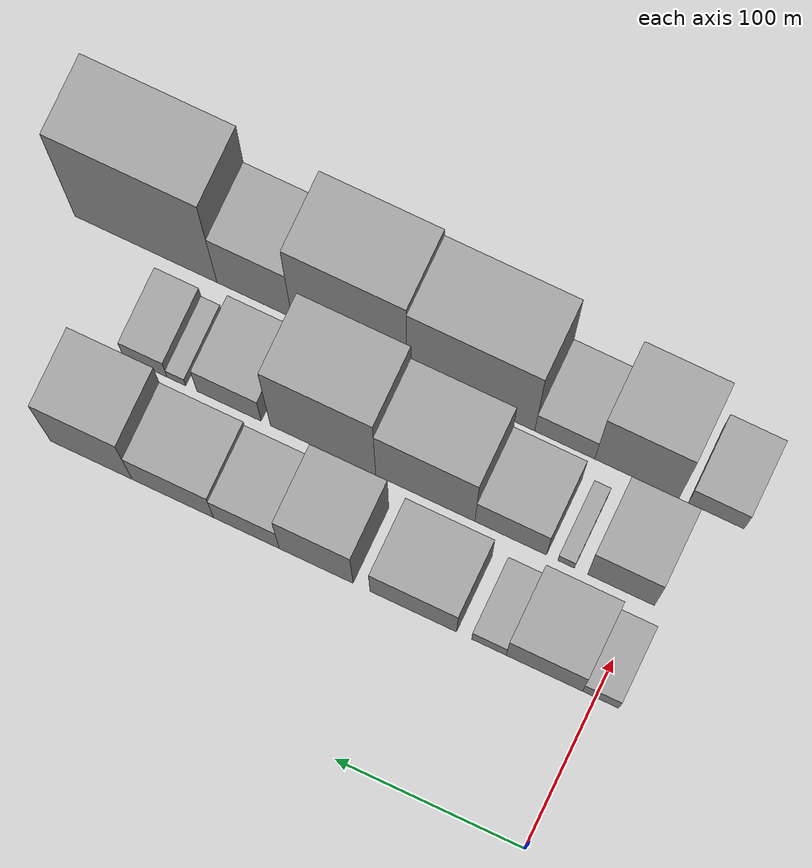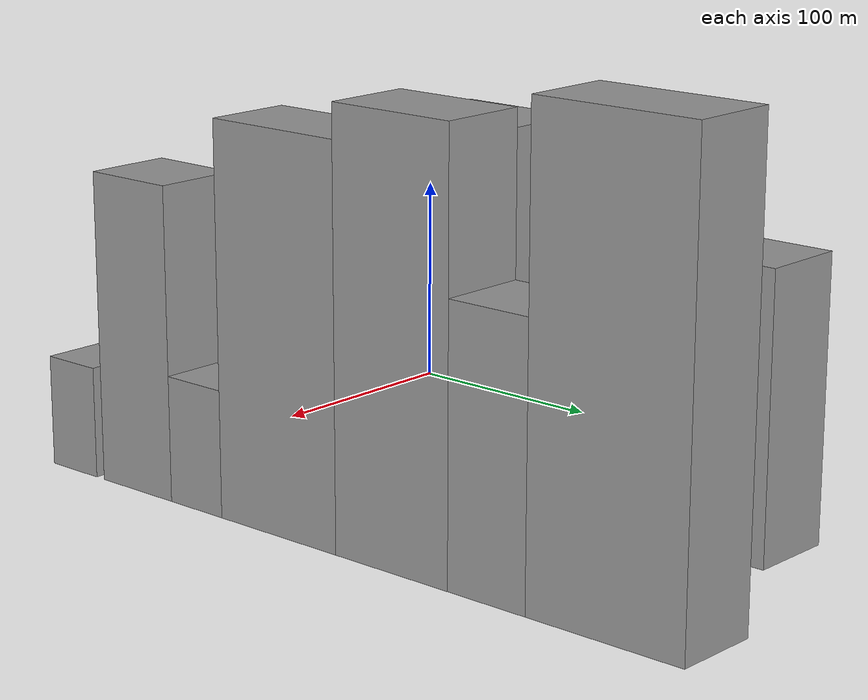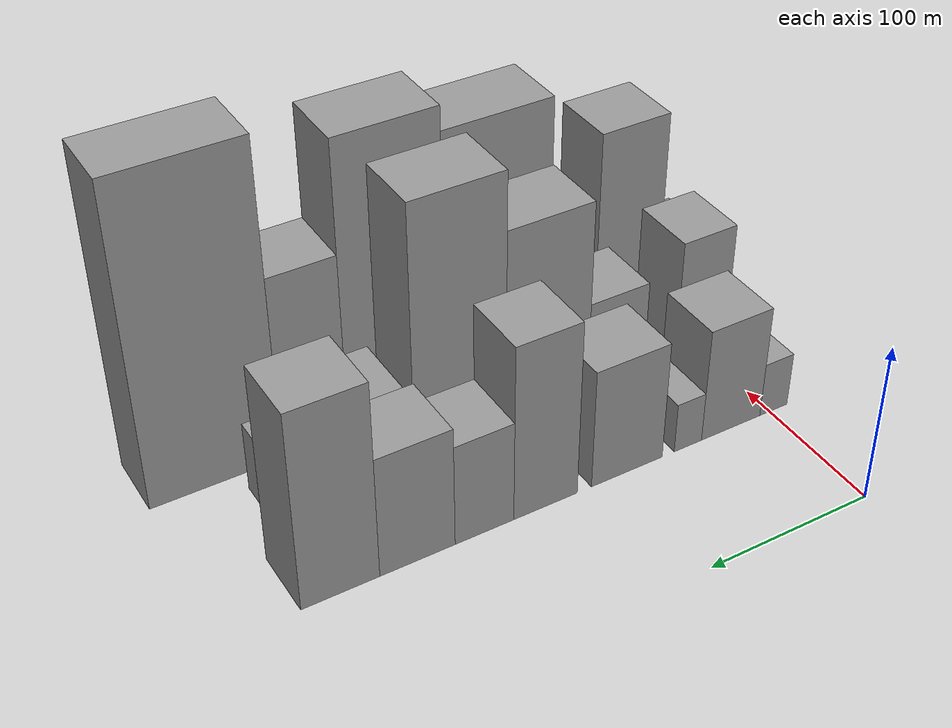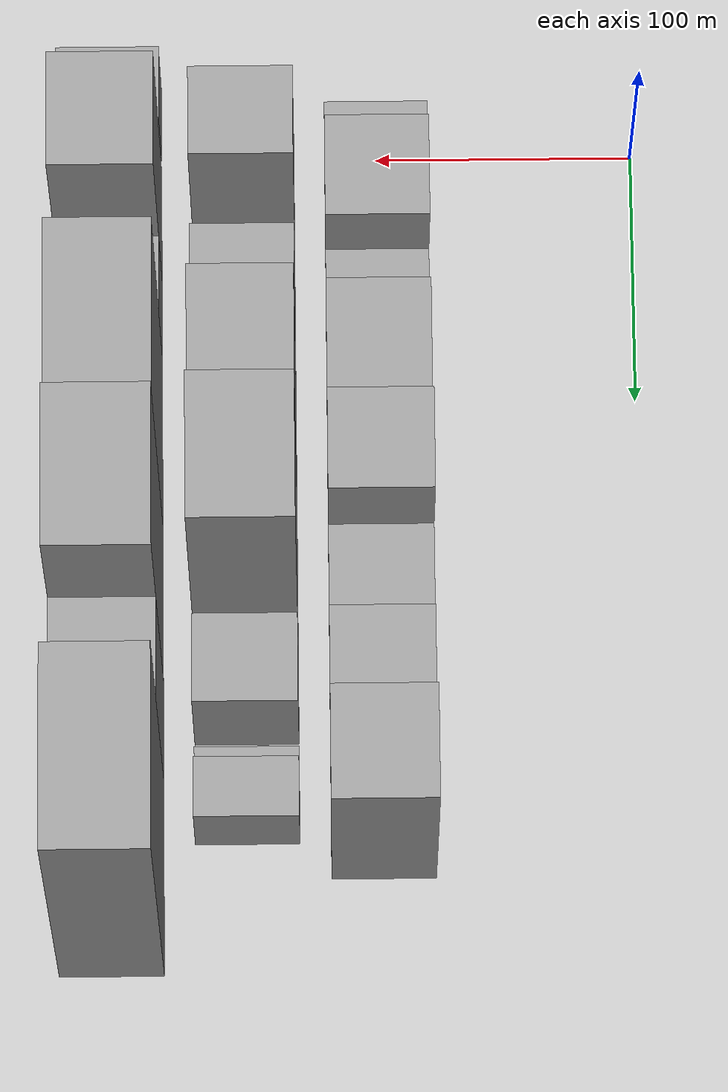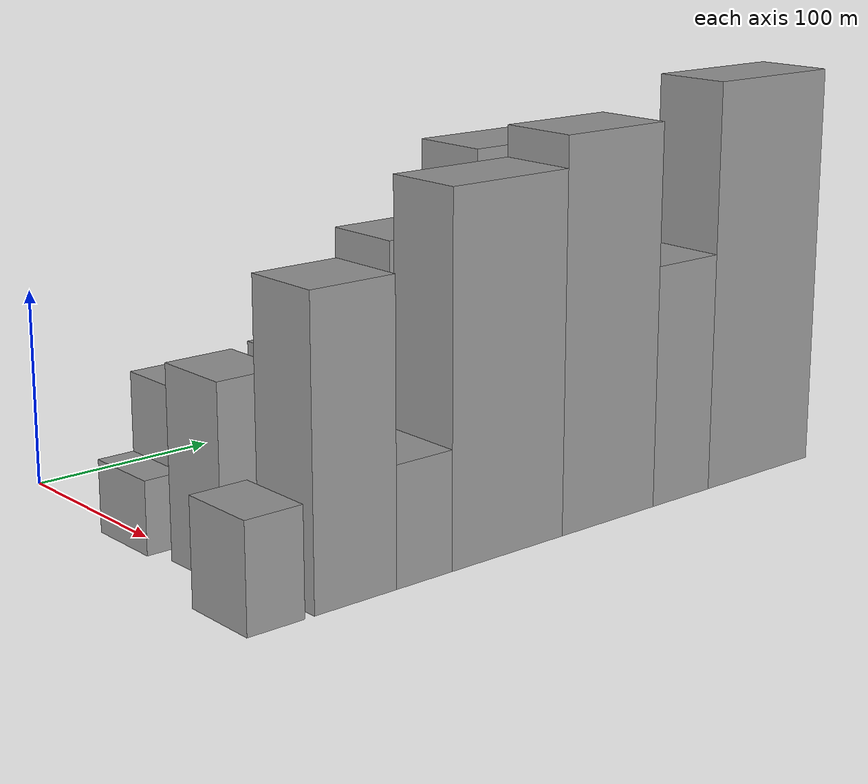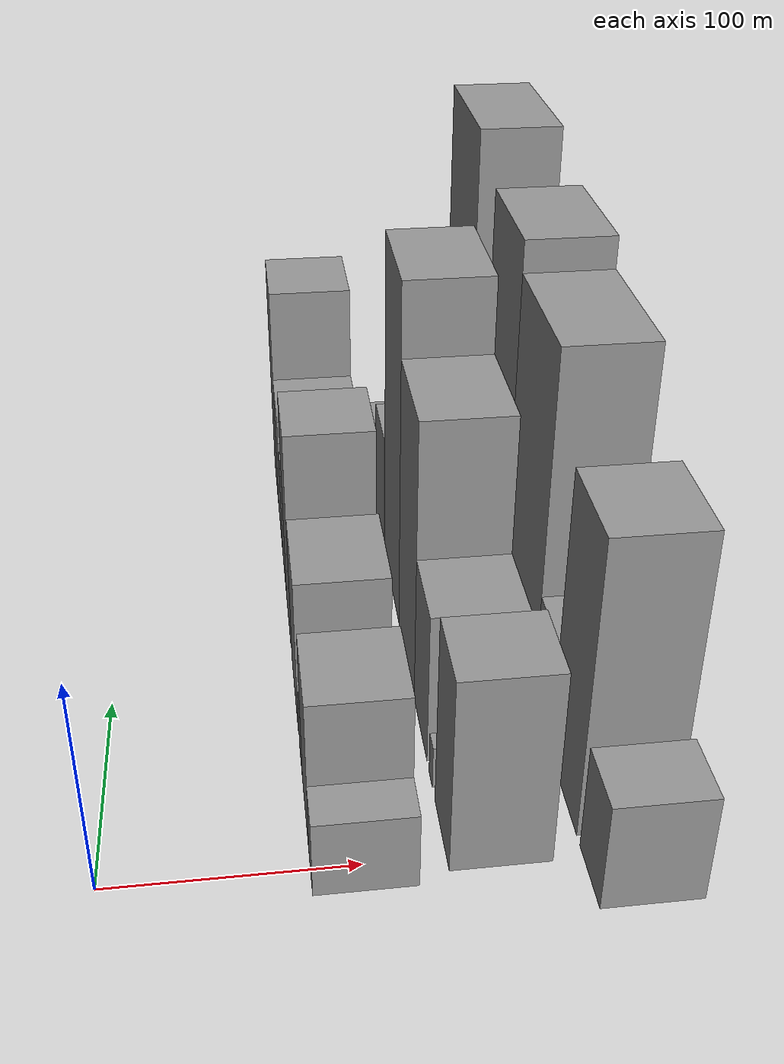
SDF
<sdf version="1.6">
 <world name="default">
  <model name="building_15">
   <static>1</static>
   <pose>100.0000 -2.6268 0 0.000000 0.000000 0.000000</pose>
   <link name="link">
    <pose>0 0 18.00 0 0 0</pose>
    <collision name="collision"><geometry><box><size>40.0000 19.1836 36.0000</size></box></geometry></collision>
    <visual name="visual">
     <cast_shadows>0</cast_shadows>
     <geometry><box><size>40.0000 19.1836 36.0000</size></box></geometry>
     <material>
      <script>
       <uri>model://grey_wall/materials/scripts</uri>
       <uri>model://grey_wall/materials/textures</uri>
       <name>vrc/grey_wall</name>
      </script>
     </material>
    </visual>
   </link>
  </model>
  <model name="building_16">
   <static>1</static>
   <pose>100.0000 27.1155 0 0.000000 0.000000 0.000000</pose>
   <link name="link">
    <pose>0 0 37.50 0 0 0</pose>
    <collision name="collision"><geometry><box><size>40.0000 40.3009 75.0000</size></box></geometry></collision>
    <visual name="visual">
     <cast_shadows>0</cast_shadows>
     <geometry><box><size>40.0000 40.3009 75.0000</size></box></geometry>
     <material>
      <script>
       <uri>model://grey_wall/materials/scripts</uri>
       <uri>model://grey_wall/materials/textures</uri>
       <name>vrc/grey_wall</name>
      </script>
     </material>
    </visual>
   </link>
  </model>
  <model name="building_17">
   <static>1</static>
   <pose>100.0000 56.4438 0 0.000000 0.000000 0.000000</pose>
   <link name="link">
    <pose>0 0 16.50 0 0 0</pose>
    <collision name="collision"><geometry><box><size>40.0000 18.3558 33.0000</size></box></geometry></collision>
    <visual name="visual">
     <cast_shadows>0</cast_shadows>
     <geometry><box><size>40.0000 18.3558 33.0000</size></box></geometry>
     <material>
      <script>
       <uri>model://grey_wall/materials/scripts</uri>
       <uri>model://grey_wall/materials/textures</uri>
       <name>vrc/grey_wall</name>
      </script>
     </material>
    </visual>
   </link>
  </model>
  <model name="building_18">
   <static>1</static>
   <pose>100.0000 96.5650 0 0.000000 0.000000 0.000000</pose>
   <link name="link">
    <pose>0 0 39.00 0 0 0</pose>
    <collision name="collision"><geometry><box><size>40.0000 45.8865 78.0000</size></box></geometry></collision>
    <visual name="visual">
     <cast_shadows>0</cast_shadows>
     <geometry><box><size>40.0000 45.8865 78.0000</size></box></geometry>
     <material>
      <script>
       <uri>model://grey_wall/materials/scripts</uri>
       <uri>model://grey_wall/materials/textures</uri>
       <name>vrc/grey_wall</name>
      </script>
     </material>
    </visual>
   </link>
  </model>
  <model name="building_19">
   <static>1</static>
   <pose>100.0000 148.1365 0 0.000000 0.000000 0.000000</pose>
   <link name="link">
    <pose>0 0 57.00 0 0 0</pose>
    <collision name="collision"><geometry><box><size>40.0000 39.2566 114.0000</size></box></geometry></collision>
    <visual name="visual">
     <cast_shadows>0</cast_shadows>
     <geometry><box><size>40.0000 39.2566 114.0000</size></box></geometry>
     <material>
      <script>
       <uri>model://grey_wall/materials/scripts</uri>
       <uri>model://grey_wall/materials/textures</uri>
       <name>vrc/grey_wall</name>
      </script>
     </material>
    </visual>
   </link>
  </model>
  <model name="building_20">
   <static>1</static>
   <pose>100.0000 185.2685 0 0.000000 0.000000 0.000000</pose>
   <link name="link">
    <pose>0 0 33.00 0 0 0</pose>
    <collision name="collision"><geometry><box><size>40.0000 35.0073 66.0000</size></box></geometry></collision>
    <visual name="visual">
     <cast_shadows>0</cast_shadows>
     <geometry><box><size>40.0000 35.0073 66.0000</size></box></geometry>
     <material>
      <script>
       <uri>model://grey_wall/materials/scripts</uri>
       <uri>model://grey_wall/materials/textures</uri>
       <name>vrc/grey_wall</name>
      </script>
     </material>
    </visual>
   </link>
  </model>
  <model name="building_21">
   <static>1</static>
   <pose>100.0000 224.4527 0 0.000000 0.000000 0.000000</pose>
   <link name="link">
    <pose>0 0 39.00 0 0 0</pose>
    <collision name="collision"><geometry><box><size>40.0000 43.3611 78.0000</size></box></geometry></collision>
    <visual name="visual">
     <cast_shadows>0</cast_shadows>
     <geometry><box><size>40.0000 43.3611 78.0000</size></box></geometry>
     <material>
      <script>
       <uri>model://grey_wall/materials/scripts</uri>
       <uri>model://grey_wall/materials/textures</uri>
       <name>vrc/grey_wall</name>
      </script>
     </material>
    </visual>
   </link>
  </model>
  <model name="building_22">
   <static>1</static>
   <pose>100.0000 267.9557 0 0.000000 0.000000 0.000000</pose>
   <link name="link">
    <pose>0 0 63.00 0 0 0</pose>
    <collision name="collision"><geometry><box><size>40.0000 43.6451 126.0000</size></box></geometry></collision>
    <visual name="visual">
     <cast_shadows>0</cast_shadows>
     <geometry><box><size>40.0000 43.6451 126.0000</size></box></geometry>
     <material>
      <script>
       <uri>model://grey_wall/materials/scripts</uri>
       <uri>model://grey_wall/materials/textures</uri>
       <name>vrc/grey_wall</name>
      </script>
     </material>
    </visual>
   </link>
  </model>
  <model name="building_45">
   <static>1</static>
   <pose>152.0000 10.8522 0 0.000000 0.000000 0.000000</pose>
   <link name="link">
    <pose>0 0 46.50 0 0 0</pose>
    <collision name="collision"><geometry><box><size>40.0000 35.3504 93.0000</size></box></geometry></collision>
    <visual name="visual">
     <cast_shadows>0</cast_shadows>
     <geometry><box><size>40.0000 35.3504 93.0000</size></box></geometry>
     <material>
      <script>
       <uri>model://grey_wall/materials/scripts</uri>
       <uri>model://grey_wall/materials/textures</uri>
       <name>vrc/grey_wall</name>
      </script>
     </material>
    </visual>
   </link>
  </model>
  <model name="building_46">
   <static>1</static>
   <pose>152.0000 39.9462 0 0.000000 0.000000 0.000000</pose>
   <link name="link">
    <pose>0 0 10.50 0 0 0</pose>
    <collision name="collision"><geometry><box><size>40.0000 8.8375 21.0000</size></box></geometry></collision>
    <visual name="visual">
     <cast_shadows>0</cast_shadows>
     <geometry><box><size>40.0000 8.8375 21.0000</size></box></geometry>
     <material>
      <script>
       <uri>model://grey_wall/materials/scripts</uri>
       <uri>model://grey_wall/materials/textures</uri>
       <name>vrc/grey_wall</name>
      </script>
     </material>
    </visual>
   </link>
  </model>
  <model name="building_47">
   <static>1</static>
   <pose>152.0000 69.3431 0 0.000000 0.000000 0.000000</pose>
   <link name="link">
    <pose>0 0 37.50 0 0 0</pose>
    <collision name="collision"><geometry><box><size>40.0000 37.9565 75.0000</size></box></geometry></collision>
    <visual name="visual">
     <cast_shadows>0</cast_shadows>
     <geometry><box><size>40.0000 37.9565 75.0000</size></box></geometry>
     <material>
      <script>
       <uri>model://grey_wall/materials/scripts</uri>
       <uri>model://grey_wall/materials/textures</uri>
       <name>vrc/grey_wall</name>
      </script>
     </material>
    </visual>
   </link>
  </model>
  <model name="building_48">
   <static>1</static>
   <pose>152.0000 114.7012 0 0.000000 0.000000 0.000000</pose>
   <link name="link">
    <pose>0 0 70.50 0 0 0</pose>
    <collision name="collision"><geometry><box><size>40.0000 52.7597 141.0000</size></box></geometry></collision>
    <visual name="visual">
     <cast_shadows>0</cast_shadows>
     <geometry><box><size>40.0000 52.7597 141.0000</size></box></geometry>
     <material>
      <script>
       <uri>model://grey_wall/materials/scripts</uri>
       <uri>model://grey_wall/materials/textures</uri>
       <name>vrc/grey_wall</name>
      </script>
     </material>
    </visual>
   </link>
  </model>
  <model name="building_49">
   <static>1</static>
   <pose>152.0000 169.1340 0 0.000000 0.000000 0.000000</pose>
   <link name="link">
    <pose>0 0 88.50 0 0 0</pose>
    <collision name="collision"><geometry><box><size>40.0000 56.1060 177.0000</size></box></geometry></collision>
    <visual name="visual">
     <cast_shadows>0</cast_shadows>
     <geometry><box><size>40.0000 56.1060 177.0000</size></box></geometry>
     <material>
      <script>
       <uri>model://grey_wall/materials/scripts</uri>
       <uri>model://grey_wall/materials/textures</uri>
       <name>vrc/grey_wall</name>
      </script>
     </material>
    </visual>
   </link>
  </model>
  <model name="building_50">
   <static>1</static>
   <pose>152.0000 219.3426 0 0.000000 0.000000 0.000000</pose>
   <link name="link">
    <pose>0 0 33.00 0 0 0</pose>
    <collision name="collision"><geometry><box><size>40.0000 34.3112 66.0000</size></box></geometry></collision>
    <visual name="visual">
     <cast_shadows>0</cast_shadows>
     <geometry><box><size>40.0000 34.3112 66.0000</size></box></geometry>
     <material>
      <script>
       <uri>model://grey_wall/materials/scripts</uri>
       <uri>model://grey_wall/materials/textures</uri>
       <name>vrc/grey_wall</name>
      </script>
     </material>
    </visual>
   </link>
  </model>
  <model name="building_51">
   <static>1</static>
   <pose>152.0000 247.5086 0 0.000000 0.000000 0.000000</pose>
   <link name="link">
    <pose>0 0 10.50 0 0 0</pose>
    <collision name="collision"><geometry><box><size>40.0000 10.0208 21.0000</size></box></geometry></collision>
    <visual name="visual">
     <cast_shadows>0</cast_shadows>
     <geometry><box><size>40.0000 10.0208 21.0000</size></box></geometry>
     <material>
      <script>
       <uri>model://grey_wall/materials/scripts</uri>
       <uri>model://grey_wall/materials/textures</uri>
       <name>vrc/grey_wall</name>
      </script>
     </material>
    </visual>
   </link>
  </model>
  <model name="building_52">
   <static>1</static>
   <pose>152.0000 264.1596 0 0.000000 0.000000 0.000000</pose>
   <link name="link">
    <pose>0 0 22.50 0 0 0</pose>
    <collision name="collision"><geometry><box><size>40.0000 23.2811 45.0000</size></box></geometry></collision>
    <visual name="visual">
     <cast_shadows>0</cast_shadows>
     <geometry><box><size>40.0000 23.2811 45.0000</size></box></geometry>
     <material>
      <script>
       <uri>model://grey_wall/materials/scripts</uri>
       <uri>model://grey_wall/materials/textures</uri>
       <name>vrc/grey_wall</name>
      </script>
     </material>
    </visual>
   </link>
  </model>
  <model name="building_80">
   <static>1</static>
   <pose>204.0000 -15.4704 0 0.000000 0.000000 0.000000</pose>
   <link name="link">
    <pose>0 0 25.50 0 0 0</pose>
    <collision name="collision"><geometry><box><size>40.0000 29.5508 51.0000</size></box></geometry></collision>
    <visual name="visual">
     <cast_shadows>0</cast_shadows>
     <geometry><box><size>40.0000 29.5508 51.0000</size></box></geometry>
     <material>
      <script>
       <uri>model://grey_wall/materials/scripts</uri>
       <uri>model://grey_wall/materials/textures</uri>
       <name>vrc/grey_wall</name>
      </script>
     </material>
    </visual>
   </link>
  </model>
  <model name="building_81">
   <static>1</static>
   <pose>204.0000 26.6767 0 0.000000 0.000000 0.000000</pose>
   <link name="link">
    <pose>0 0 70.50 0 0 0</pose>
    <collision name="collision"><geometry><box><size>40.0000 44.7435 141.0000</size></box></geometry></collision>
    <visual name="visual">
     <cast_shadows>0</cast_shadows>
     <geometry><box><size>40.0000 44.7435 141.0000</size></box></geometry>
     <material>
      <script>
       <uri>model://grey_wall/materials/scripts</uri>
       <uri>model://grey_wall/materials/textures</uri>
       <name>vrc/grey_wall</name>
      </script>
     </material>
    </visual>
   </link>
  </model>
  <model name="building_82">
   <static>1</static>
   <pose>204.0000 64.9912 0 0.000000 0.000000 0.000000</pose>
   <link name="link">
    <pose>0 0 28.50 0 0 0</pose>
    <collision name="collision"><geometry><box><size>40.0000 31.8854 57.0000</size></box></geometry></collision>
    <visual name="visual">
     <cast_shadows>0</cast_shadows>
     <geometry><box><size>40.0000 31.8854 57.0000</size></box></geometry>
     <material>
      <script>
       <uri>model://grey_wall/materials/scripts</uri>
       <uri>model://grey_wall/materials/textures</uri>
       <name>vrc/grey_wall</name>
      </script>
     </material>
    </visual>
   </link>
  </model>
  <model name="building_83">
   <static>1</static>
   <pose>204.0000 115.0102 0 0.000000 0.000000 0.000000</pose>
   <link name="link">
    <pose>0 0 87.00 0 0 0</pose>
    <collision name="collision"><geometry><box><size>40.0000 68.1527 174.0000</size></box></geometry></collision>
    <visual name="visual">
     <cast_shadows>0</cast_shadows>
     <geometry><box><size>40.0000 68.1527 174.0000</size></box></geometry>
     <material>
      <script>
       <uri>model://grey_wall/materials/scripts</uri>
       <uri>model://grey_wall/materials/textures</uri>
       <name>vrc/grey_wall</name>
      </script>
     </material>
    </visual>
   </link>
  </model>
  <model name="building_84">
   <static>1</static>
   <pose>204.0000 179.8777 0 0.000000 0.000000 0.000000</pose>
   <link name="link">
    <pose>0 0 94.50 0 0 0</pose>
    <collision name="collision"><geometry><box><size>40.0000 61.5822 189.0000</size></box></geometry></collision>
    <visual name="visual">
     <cast_shadows>0</cast_shadows>
     <geometry><box><size>40.0000 61.5822 189.0000</size></box></geometry>
     <material>
      <script>
       <uri>model://grey_wall/materials/scripts</uri>
       <uri>model://grey_wall/materials/textures</uri>
       <name>vrc/grey_wall</name>
      </script>
     </material>
    </visual>
   </link>
  </model>
  <model name="building_85">
   <static>1</static>
   <pose>204.0000 230.6849 0 0.000000 0.000000 0.000000</pose>
   <link name="link">
    <pose>0 0 60.00 0 0 0</pose>
    <collision name="collision"><geometry><box><size>40.0000 40.0322 120.0000</size></box></geometry></collision>
    <visual name="visual">
     <cast_shadows>0</cast_shadows>
     <geometry><box><size>40.0000 40.0322 120.0000</size></box></geometry>
     <material>
      <script>
       <uri>model://grey_wall/materials/scripts</uri>
       <uri>model://grey_wall/materials/textures</uri>
       <name>vrc/grey_wall</name>
      </script>
     </material>
    </visual>
   </link>
  </model>
  <model name="building_86">
   <static>1</static>
   <pose>204.0000 288.8746 0 0.000000 0.000000 0.000000</pose>
   <link name="link">
    <pose>0 0 102.00 0 0 0</pose>
    <collision name="collision"><geometry><box><size>40.0000 76.3472 204.0000</size></box></geometry></collision>
    <visual name="visual">
     <cast_shadows>0</cast_shadows>
     <geometry><box><size>40.0000 76.3472 204.0000</size></box></geometry>
     <material>
      <script>
       <uri>model://grey_wall/materials/scripts</uri>
       <uri>model://grey_wall/materials/textures</uri>
       <name>vrc/grey_wall</name>
      </script>
     </material>
    </visual>
   </link>
  </model>
 </world>
</sdf>
